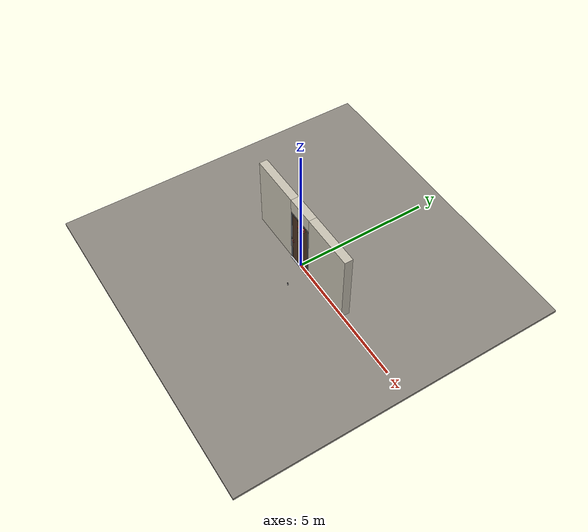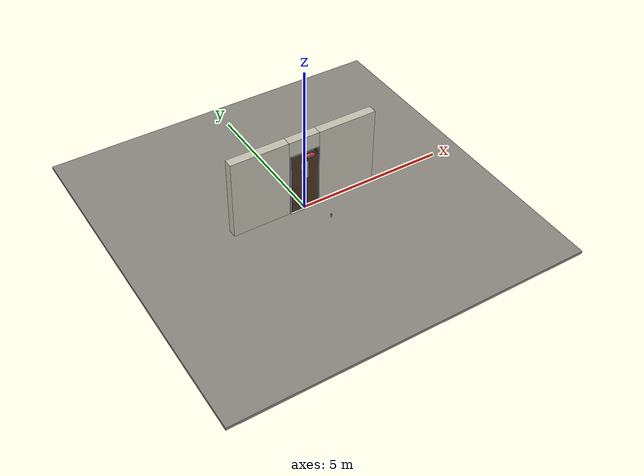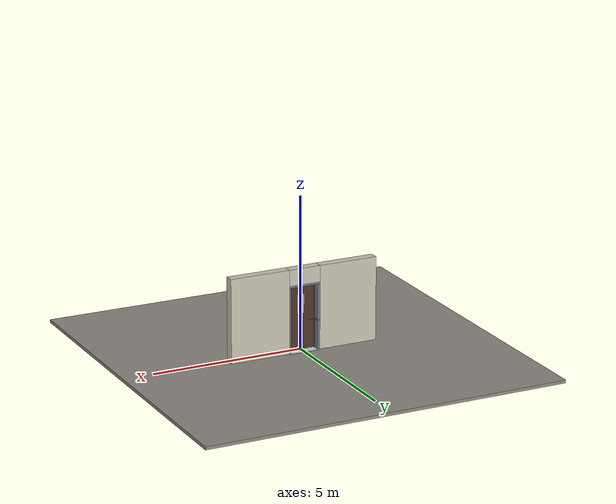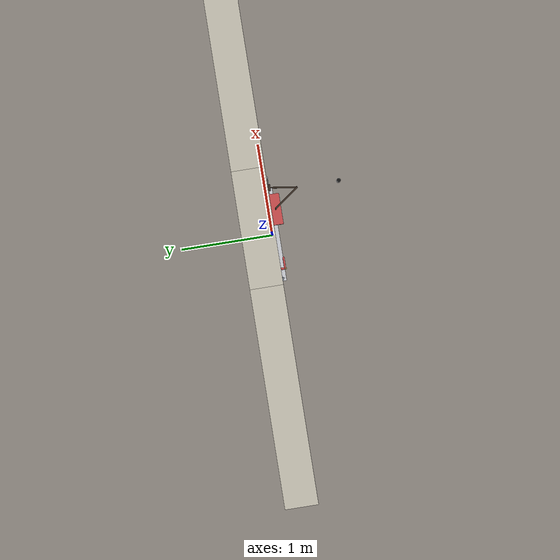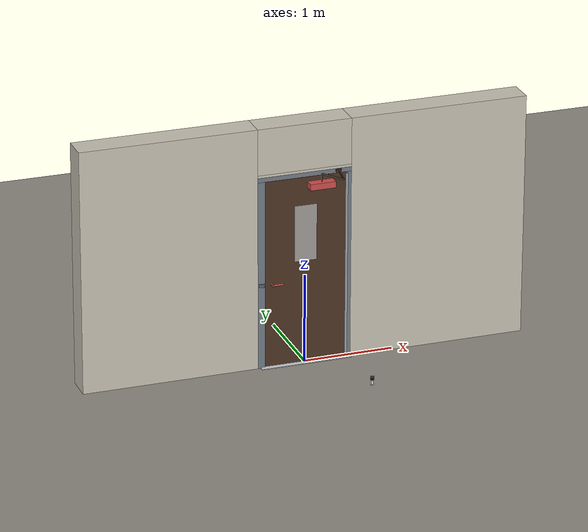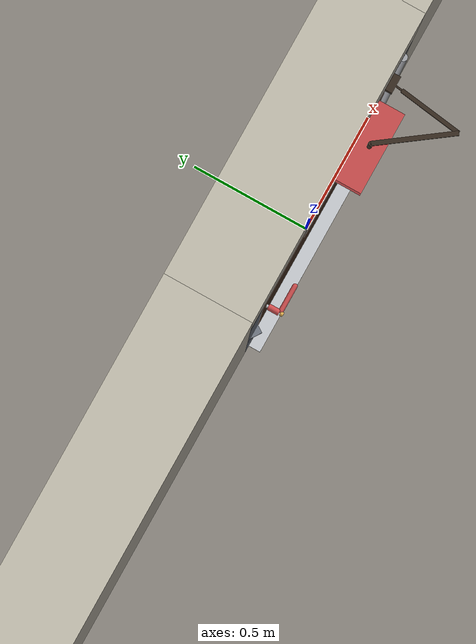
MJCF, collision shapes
<?xml version="1.0" ?>
<mujoco model="db0181_swing_single_full">
  <compiler angle="radian" meshdir="../../hardware" texturedir="../../textures" autolimits="true" inertiafromgeom="false"/>
  <option timestep="0.002" integrator="implicitfast" cone="elliptic" impratio="10" noslip_iterations="3">
    <flag multiccd="enable"/>
  </option>
  <size memory="16M"/>
  <default>
    <geom condim="4" solref="0.005 1" solimp="0.95 0.99 0.001"/>
    <joint solreflimit="0.005 1" solimplimit="0.95 0.99 0.001"/>
    <tendon solreflimit="0.005 1"/>
    <equality solref="0.002 1"/>
  </default>
  <visual>
    <headlight ambient="0.4 0.4 0.4" diffuse="0.7 0.7 0.7" specular="0.2 0.2 0.2"/>
    <quality shadowsize="4096"/>
    <map znear="0.01" zfar="60"/>
  </visual>
  <asset>
    <mesh name="closer_body_fdc4667657" file="closer_body_fdc4667657.obj"/>
    <mesh name="lever_6268dcb28c" file="lever_6268dcb28c.obj"/>
    <material name="mat_floor" rgba="0.55 0.53 0.5 1" specular="0.2" shininess="0.15" reflectance="0"/>
    <material name="mat_wall" rgba="0.78 0.76 0.7 1" specular="0.2" shininess="0.1" reflectance="0"/>
    <material name="mat_leaf" rgba="0.3 0.2 0.14 1" specular="0.23" shininess="0.64" reflectance="0.02"/>
    <material name="mat_glass" rgba="0.9 0.93 0.95 0.6" specular="0.2" shininess="0.5" reflectance="0.1"/>
    <material name="mat_hinge" rgba="0.65 0.66 0.68 1" specular="0.74" shininess="0.5" reflectance="0.36"/>
    <material name="mat_op_stainless" rgba="0.75 0.76 0.77 1" specular="0.8" shininess="0.65" reflectance="0.4"/>
    <material name="mat_trim" rgba="0.85 0.66 0.3 1" specular="0.8" shininess="0.75" reflectance="0.4"/>
    <material name="mat_keyway" rgba="0.05 0.05 0.05 1" specular="0.2" shininess="0.5" reflectance="0"/>
    <material name="mat_bolt" rgba="0.85 0.66 0.3 1" specular="0.8" shininess="0.75" reflectance="0.4"/>
    <material name="mat_frame" rgba="0.45 0.48 0.52 1" specular="0.32" shininess="0.6" reflectance="0.08"/>
    <material name="mat_threshold" rgba="0.8 0.81 0.83 1" specular="0.8" shininess="0.6" reflectance="0.4"/>
    <material name="mat_closer" rgba="0.22 0.17 0.13 1" specular="0.8" shininess="0.6" reflectance="0.4"/>
    <material name="mat_bumper_stop" rgba="0.08 0.08 0.08 1" specular="0.2" shininess="0.1" reflectance="0"/>
    <material name="mat_stop_base" rgba="0.9 0.9 0.92 1" specular="0.8" shininess="0.9" reflectance="0.4"/>
    <texture name="skybox" type="skybox" builtin="gradient" rgb1="0.6 0.7 0.85" rgb2="0.9 0.92 0.95" width="256" height="256"/>
  </asset>
  <worldbody>
    <light name="sun" pos="1.5 -2.5 4" dir="-0.3 0.5 -0.8" directional="true" diffuse="0.8 0.8 0.8" specular="0.3 0.3 0.3" castshadow="true"/>
    <light name="fill" pos="-1.5 2.5 3" dir="0.3 -0.5 -0.7" directional="true" diffuse="0.35 0.35 0.4" castshadow="false"/>
    <camera name="robot_view" pos="0 -2.516812 1.812087" xyaxes="1 0 0 0 0.26963 0.962964" fovy="52"/>
    <camera name="far_view" pos="0 2.758812 1.812087" xyaxes="-1 0 0 0 -0.26963 0.962964" fovy="52"/>
    <camera name="iso" pos="-2.004737 -2.094762 2.234138" xyaxes="0.741536 -0.670913 0 0.242917 0.268487 0.932151" fovy="46"/>
    <camera name="detail_handle" pos="-0.1105 -0.877 1.245" xyaxes="0.97561 0.219512 0 -0.070934 0.315262 0.94635" fovy="38"/>
    <geom name="floor" type="box" size="6 6 0.05" pos="0 0 -0.05" material="mat_floor" group="0" contype="1" conaffinity="1" friction="0.8 0.005 0.0001" density="2400"/>
    <geom name="wall_left" type="box" size="0.97975 0.15 1.3735" pos="-1.52025 0.121 1.3735" material="mat_wall" group="0" contype="1" conaffinity="1" friction="0.6 0.005 0.0001" density="800"/>
    <geom name="wall_right" type="box" size="0.99475 0.15 1.3735" pos="1.50525 0.121 1.3735" material="mat_wall" group="0" contype="1" conaffinity="1" friction="0.6 0.005 0.0001" density="800"/>
    <geom name="wall_header" type="box" size="0.5255 0.15 0.26" pos="-0.015 0.121 2.487" material="mat_wall" group="0" contype="1" conaffinity="1" friction="0.6 0.005 0.0001" density="800"/>
    <geom name="jamb_hinge" type="box" size="0.025 0.15 1.0735" pos="0.4855 0.121 1.0735" material="mat_frame" group="0" contype="1" conaffinity="1" friction="0.6 0.005 0.0001" density="300"/>
    <geom name="strike_965_wall_n" type="box" size="0.04 0.13075 0.0183" pos="-0.5005 0.14025 0.965" material="mat_frame" group="0" contype="1" conaffinity="1" friction="0.6 0.005 0.0001" density="300"/>
    <geom name="strike_965_wall_p" type="box" size="0.04 0.008 0.0183" pos="-0.5005 -0.0175 0.965" material="mat_frame" group="0" contype="1" conaffinity="1" friction="0.6 0.005 0.0001" density="300"/>
    <geom name="strike_965_ramp" type="box" size="0.04 0.018028 0.0183" pos="-0.503782 -0.018312 0.965" quat="0.957092 0 0 -0.289784" material="mat_frame" group="0" contype="1" conaffinity="1" friction="0.12 0.005 0.0001" density="300"/>
    <geom name="strike_965_back" type="box" size="0.0285 0.0095 0.0183" pos="-0.512 0 0.965" material="mat_frame" group="0" contype="1" conaffinity="1" friction="0.6 0.005 0.0001" density="300"/>
    <geom name="jamb_strike_0" type="box" size="0.04 0.15 0.47335" pos="-0.5005 0.121 0.47335" material="mat_frame" group="0" contype="1" conaffinity="1" friction="0.6 0.005 0.0001" density="300"/>
    <geom name="jamb_strike_1" type="box" size="0.04 0.15 0.58185" pos="-0.5005 0.121 1.56515" material="mat_frame" group="0" contype="1" conaffinity="1" friction="0.6 0.005 0.0001" density="300"/>
    <geom name="jamb_head" type="box" size="0.5255 0.15 0.025" pos="-0.015 0.121 2.172" material="mat_frame" group="0" contype="1" conaffinity="1" friction="0.6 0.005 0.0001" density="300"/>
    <geom name="head_stud" type="box" size="0.5255 0.15 0.015" pos="-0.015 0.121 2.212" material="mat_wall" group="0" contype="1" conaffinity="1" friction="0.6 0.005 0.0001" density="500"/>
    <geom name="stop_hinge" type="box" size="0.0055 0.016 1.0735" pos="0.455 0.0385 1.0735" material="mat_frame" group="0" contype="1" conaffinity="1" friction="0.6 0.005 0.0001" density="300"/>
    <geom name="stop_strike" type="box" size="0.0055 0.016 1.0735" pos="-0.455 0.0385 1.0735" material="mat_frame" group="0" contype="1" conaffinity="1" friction="0.6 0.005 0.0001" density="300"/>
    <geom name="stop_head" type="box" size="0.4605 0.016 0.0055" pos="0 0.0385 2.1415" material="mat_frame" group="0" contype="1" conaffinity="1" friction="0.6 0.005 0.0001" density="300"/>
    <geom name="threshold" type="box" size="0.5105 0.2 0.004" pos="0 0.121 0.004" material="mat_threshold" group="0" contype="1" conaffinity="1" friction="0.6 0.005 0.0001" density="2700"/>
    <geom name="closer_bracket" type="box" size="0.03 0.012 0.014" pos="0.3605 -0.041 2.177" material="mat_closer" group="1" contype="0" conaffinity="0" density="2700"/>
    <geom name="door_stop_base" type="cylinder" size="0.022 0.003" pos="0.4735 -0.8059 0.003" material="mat_stop_base" group="0" contype="1" conaffinity="1" friction="0.6 0.005 0.0001" density="7850"/>
    <geom name="door_stop_post" type="cylinder" size="0.012 0.0245" pos="0.4735 -0.8059 0.0305" material="mat_stop_base" group="0" contype="1" conaffinity="1" friction="0.6 0.005 0.0001" density="7850"/>
    <geom name="door_stop_bumper" type="cylinder" size="0.022 0.02" pos="0.4735 -0.8059 0.075" material="mat_bumper_stop" group="0" contype="1" conaffinity="1" friction="0.6 0.005 0.0001" density="1100"/>
    <site name="approach_point" pos="0 -1.5 0" quat="1 0 0 0" size="0.05" rgba="0.2 0.9 0.2 0.5" group="4"/>
    <site name="goal_point" pos="0 1.5 0" quat="1 0 0 0" size="0.05" rgba="0.2 0.9 0.2 0.5" group="4"/>
    <site name="door_plane_center" pos="0 0 1.0735" quat="1 0 0 0" size="0.02" rgba="0.2 0.9 0.2 0.5" group="4"/>
    <body name="leaf" pos="0.4605 0 0">
      <inertial pos="-0.4079 -0.015594 1.270278" mass="64.867255" quat="0.51317 -0.513267 -0.474439 -0.498117" diaginertia="4.249970272 29.729304151 33.874077782"/>
      <joint name="leaf_hinge" type="hinge" axis="0 0 1" pos="-0.003 -0.029 0" limited="true" range="0 1.570796" damping="12.268966" frictionloss="2.82052" stiffness="15.342537" springref="-1.864099" armature="0.02"/>
      <geom name="leaf_slab" type="box" size="0.457 0.022 1.067" pos="-0.46 0 1.076" material="mat_leaf" group="0" contype="1" conaffinity="1" friction="0.4 0.005 0.0001" density="1"/>
      <geom name="leaf_glass_0" type="box" size="0.125 0.0228 0.3201" pos="-0.46 0 1.5028" material="mat_glass" group="1" contype="0" conaffinity="0" density="1"/>
      <geom name="hinge_continuous" type="cylinder" size="0.0136 1.057" pos="-0.003 -0.029 1.076" material="mat_hinge" group="1" contype="0" conaffinity="0" density="2700"/>
      <geom name="leaf_latch_bolt_faceplate" type="box" size="0.0006 0.014 0.0283" pos="-0.9164 0 0.965" material="mat_bolt" group="1" contype="0" conaffinity="0" density="8500"/>
      <geom name="closer_body" type="mesh" mesh="closer_body_fdc4667657" pos="-0.3 -0.022 2.054" quat="0 0 -0.707107 0.707107" material="mat_closer" group="1" contype="0" conaffinity="0" density="2000"/>
      <geom name="closer_body_col" type="box" size="0.145 0.05 0.035" pos="-0.3 -0.072 2.054" material="mat_closer" group="3" contype="1" conaffinity="1" rgba="0.8 0.3 0.3 0.25" friction="0.6 0.005 0.0001" density="2000"/>
      <geom name="closer_pinion_shaft" type="cylinder" size="0.008 0.0615" pos="-0.3 -0.072 2.1155" material="mat_closer" group="1" contype="0" conaffinity="0" density="2700"/>
      <site name="leaf_edge_mid" pos="-0.917 0 1.067" quat="1 0 0 0" size="0.02" rgba="0.2 0.9 0.2 0.5" group="4"/>
      <body name="leaf_handle" pos="-0.847 0 0.965">
        <inertial pos="0.034236 -0.000902 0" mass="1.065931" quat="0.700002 0 0 -0.714141" diaginertia="0.002381881 0.004028137 0.00584214"/>
        <joint name="leaf_handle_hinge" type="hinge" axis="0 1 0" limited="true" range="0 0.09" damping="0.255799" frictionloss="0.05" stiffness="1.2" springref="-0.583333" armature="0.01"/>
        <geom name="leaf_handle_spindle" type="cylinder" size="0.006 0.03" pos="0 0 0" quat="0.707107 -0.707107 0 0" material="mat_op_stainless" group="1" contype="0" conaffinity="0" density="7850"/>
        <geom name="leaf_handle_lever_n" type="mesh" mesh="lever_6268dcb28c" pos="0 -0.022 0" quat="0 0 -0.707107 0.707107" material="mat_op_stainless" group="1" contype="0" conaffinity="0" density="3000"/>
        <geom name="leaf_handle_lever_col_n" type="capsule" size="0.0095 0.0505" pos="0.06 -0.077 0" quat="0.707107 0 0.707107 0" material="mat_op_stainless" group="3" contype="1" conaffinity="1" rgba="0.8 0.3 0.3 0.25" friction="0.7 0.01 0.0001" density="3000"/>
        <geom name="leaf_handle_hub_col_n" type="cylinder" size="0.012 0.022" pos="0 -0.052 0" quat="0.707107 -0.707107 0 0" material="mat_op_stainless" group="3" contype="1" conaffinity="1" rgba="0.8 0.3 0.3 0.25" friction="0.6 0.005 0.0001" density="3000"/>
        <geom name="leaf_handle_cylinder_n" type="cylinder" size="0.0085 0.006" pos="0 -0.0845 0" quat="0.707107 -0.707107 0 0" material="mat_trim" group="1" contype="0" conaffinity="0" density="7100"/>
        <geom name="leaf_handle_keyway_n" type="box" size="0.0012 0.0008 0.006" pos="0 -0.091 0" material="mat_keyway" group="1" contype="0" conaffinity="0" density="7100"/>
        <geom name="leaf_handle_lever_p" type="mesh" mesh="lever_6268dcb28c" pos="0 0.022 0" quat="0 0 0.707107 0.707107" material="mat_op_stainless" group="1" contype="0" conaffinity="0" density="3000"/>
        <geom name="leaf_handle_lever_col_p" type="capsule" size="0.0095 0.0505" pos="0.06 0.077 0" quat="0.707107 0 0.707107 0" material="mat_op_stainless" group="3" contype="1" conaffinity="1" rgba="0.8 0.3 0.3 0.25" friction="0.7 0.01 0.0001" density="3000"/>
        <geom name="leaf_handle_hub_col_p" type="cylinder" size="0.012 0.022" pos="0 0.052 0" quat="0.707107 -0.707107 0 0" material="mat_op_stainless" group="3" contype="1" conaffinity="1" rgba="0.8 0.3 0.3 0.25" friction="0.6 0.005 0.0001" density="3000"/>
        <geom name="leaf_handle_turn_button_p" type="cylinder" size="0.006 0.005" pos="0 0.0875 0" quat="0.707107 -0.707107 0 0" material="mat_trim" group="1" contype="0" conaffinity="0" density="7100"/>
        <site name="leaf_handle_grip_n" pos="0.096 -0.077 0" quat="1 0 0 0" size="0.012" rgba="0.2 0.9 0.2 0.5" group="4"/>
        <site name="leaf_handle_grip_p" pos="0.096 0.077 0" quat="1 0 0 0" size="0.012" rgba="0.2 0.9 0.2 0.5" group="4"/>
      </body>
      <body name="leaf_latch_bolt" pos="-0.917 0 0.965">
        <inertial pos="0.0055 0 0" mass="0.074627" quat="0.92388 0.382683 0 0" diaginertia="0.000002271 0.000013255 0.000013255"/>
        <joint name="leaf_latch_bolt_slide" type="slide" axis="1 0 0" limited="true" range="0 0.019" damping="2" frictionloss="0.3" stiffness="600" springref="-0.01" armature="0.1"/>
        <geom name="leaf_latch_bolt_capsule" type="capsule" size="0.008 0.0165" pos="0.0055 0 0" quat="0.707107 0 -0.707107 0" material="mat_bolt" group="0" contype="1" conaffinity="1" friction="0.2 0.005 0.0001" density="8500"/>
      </body>
      <body name="closer_arm_main" pos="-0.3 -0.072 2.177" quat="0.890947 0 0 -0.454107">
        <inertial pos="0.14 0 0" mass="0.12096" quat="1 0 0 0" diaginertia="0.000003588 0.00079128 0.000792852"/>
        <joint name="closer_pinion" type="hinge" axis="0 0 1" limited="false" damping="0.01" armature="0.002"/>
        <geom name="closer_arm_main_geom" type="box" size="0.14 0.008 0.005" pos="0.14 0 0" material="mat_closer" group="1" contype="0" conaffinity="0" density="2700"/>
        <body name="closer_arm_fore" pos="0.28 0 0" quat="0.373215 0 0 0.927745">
          <inertial pos="0.128088 0 0" mass="0.076531" quat="1 0 0 0" diaginertia="0.000001771 0.000437665 0.000438201"/>
          <joint name="closer_elbow" type="hinge" axis="0 0 1" limited="false" damping="0.01" armature="0.002"/>
          <geom name="closer_arm_fore_geom" type="box" size="0.1125 0.007 0.004" pos="0.1125 0 0" material="mat_closer" group="1" contype="0" conaffinity="0" density="2700"/>
          <geom name="closer_fore_neck" type="box" size="0.0175 0.003 0.003" pos="0.2425 0 0" material="mat_closer" group="1" contype="0" conaffinity="0" density="2700"/>
          <geom name="closer_fore_pivot" type="cylinder" size="0.005 0.012" pos="0.26 0 0" material="mat_closer" group="1" contype="0" conaffinity="0" density="2700"/>
        </body>
      </body>
    </body>
  </worldbody>
  <tendon>
    <fixed name="leaf_latch_bolt_coupling" limited="true" range="0 10">
      <joint joint="leaf_latch_bolt_slide" coef="1"/>
      <joint joint="leaf_handle_hinge" coef="-0.020879"/>
    </fixed>
  </tendon>
  <equality>
    <connect name="closer_arm_connect" body1="closer_arm_fore" body2="world" anchor="0.26 0 0" active="true"/>
  </equality>
  <contact>
    <exclude body1="closer_arm_main" body2="leaf"/>
    <exclude body1="closer_arm_fore" body2="leaf"/>
    <exclude body1="closer_arm_main" body2="closer_arm_fore"/>
  </contact>
  <sensor>
    <jointpos name="leaf_hinge_pos" joint="leaf_hinge"/>
    <jointvel name="leaf_hinge_vel" joint="leaf_hinge"/>
    <jointpos name="leaf_handle_hinge_pos" joint="leaf_handle_hinge"/>
    <jointvel name="leaf_handle_hinge_vel" joint="leaf_handle_hinge"/>
    <jointpos name="leaf_latch_bolt_slide_pos" joint="leaf_latch_bolt_slide"/>
    <jointvel name="leaf_latch_bolt_slide_vel" joint="leaf_latch_bolt_slide"/>
  </sensor>
</mujoco>
